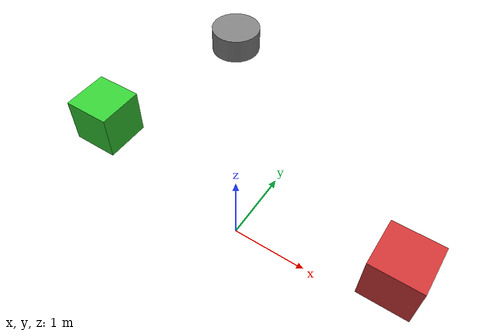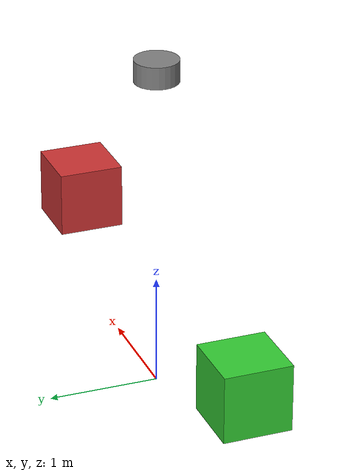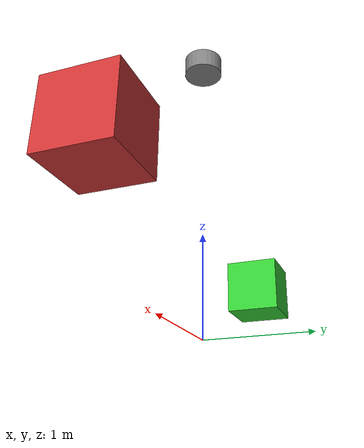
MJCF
<mujoco>
  <option gravity="0 0 -9.81"/>
  <worldbody>
    <body name="pulley" pos="0 0 3">
      <geom type="cylinder" size="0.2 0.1" rgba="0.5 0.5 0.5 1"/>
    </body>
    <body name="surface" pos="-10 0 -10">
      <geom type="plane" size="30 30 0.1" rgba="0.8 0.8 0.8 1"/>
    </body>
    <body name="mass1" pos="-2 0 1">
      <geom type="box" size="0.3 0.3 0.3" density="8" rgba="0.2 0.8 0.2 1"/>
      <joint name="mass1_joint" type="free"/>
    </body>
    <body name="mass2" pos="2 0 1">
      <geom type="box" size="0.3 0.3 0.3" density="2" rgba="0.8 0.2 0.2 1"/>
      <joint name="mass2_joint" type="free"/>
    </body>
  </worldbody>
</mujoco>
